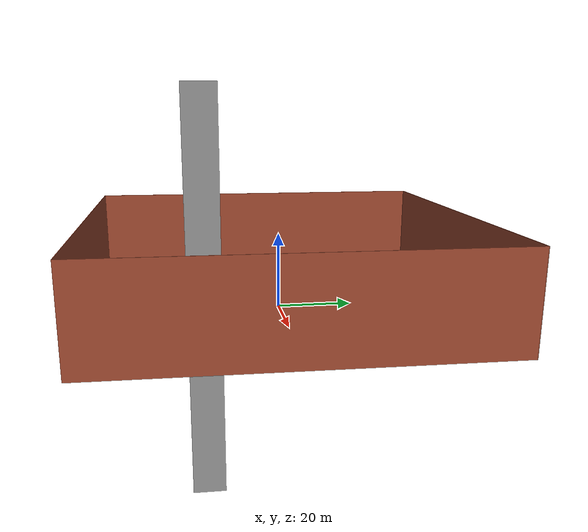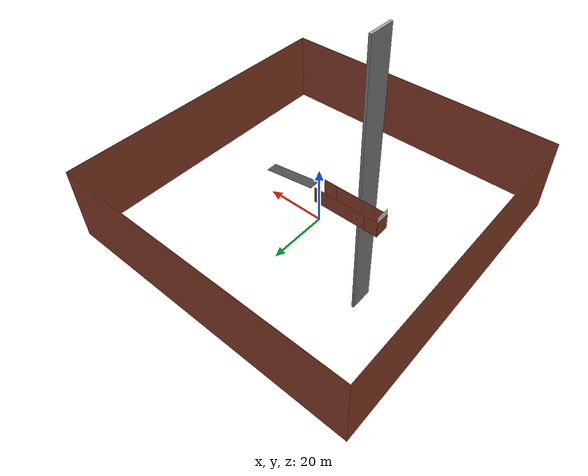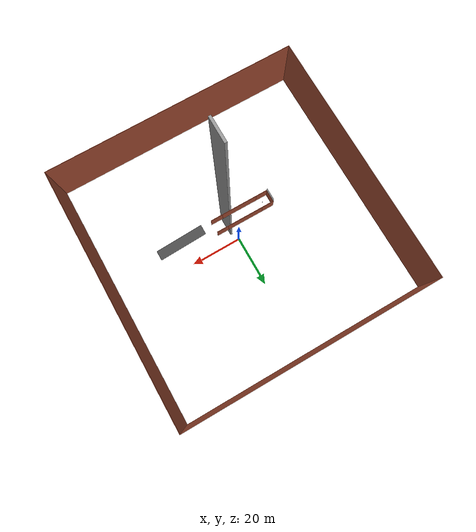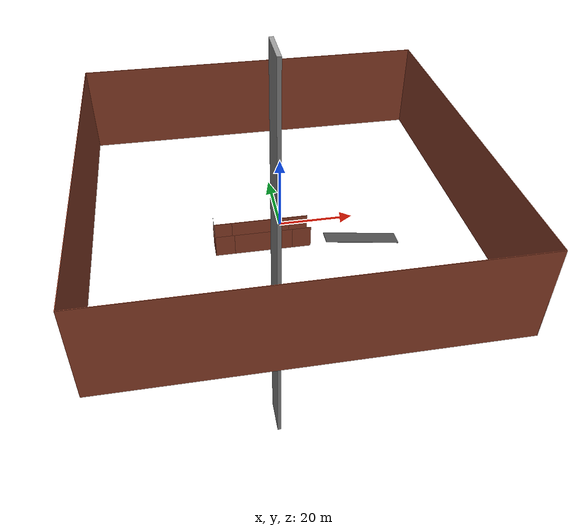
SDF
<sdf version="1.6">
 <world name="vrc_task_1">
  <scene><ambient>0.4 0.4 0.4 1</ambient><background>0.7 0.7 0.7 1</background><shadows>1</shadows></scene>
  <physics name="default_physics" default="0" type="ode">
   <ode>
    <solver>
     <type>quick</type>
     <iters>10</iters>
     <sor>1</sor>
     <use_dynamic_moi_rescaling>0</use_dynamic_moi_rescaling>
    </solver>
    <constraints>
     <cfm>0</cfm>
     <erp>0.2</erp>
     <contact_max_correcting_vel>100</contact_max_correcting_vel>
     <contact_surface_layer>0.001</contact_surface_layer>
    </constraints>
   </ode>
   <max_step_size>0.004</max_step_size>
   <real_time_factor>1</real_time_factor>
   <real_time_update_rate>250</real_time_update_rate>
  </physics>
  <light name="sun" type="directional">
   <pose>0 0 10 0 -0 0</pose>
   <diffuse>0.8 0.8 0.8 1</diffuse>
   <specular>0.2 0.2 0.2 1</specular>
   <attenuation>
    <range>1000</range>
    <constant>0.9</constant>
    <linear>0.01</linear>
    <quadratic>0.001</quadratic>
   </attenuation>
   <direction>-0.5 0.1 -0.9</direction>
  </light>
  <gravity>0 0 -9.8066</gravity>
  <magnetic_field>6e-06 2.3e-05 -4.2e-05</magnetic_field>
  <atmosphere type="adiabatic"/>
  <spherical_coordinates>
   <surface_model>EARTH_WGS84</surface_model>
   <latitude_deg>0</latitude_deg>
   <longitude_deg>0</longitude_deg>
   <elevation>0</elevation>
   <heading_deg>0</heading_deg>
  </spherical_coordinates>
  <model name="wall">
   <pose>0 50 0 0 -0 0</pose>
   <link name="Wall_1">
    <collision name="Wall_1_Collision">
     <geometry><box><size>100.15 0.15 25</size></box></geometry>
     <pose>0 0 12.5 0 -0 0</pose>
    </collision>
    <visual name="Wall_1_Visual">
     <pose>0 0 12.5 0 -0 0</pose>
     <geometry><box><size>100.15 0.15 25</size></box></geometry>
     <material>
      <script><uri>file://media/materials/scripts/gazebo.material</uri><name>Gazebo/Bricks</name></script>
      <ambient>1 1 1 1</ambient>
     </material>
     <meta><layer>0</layer></meta>
    </visual>
   </link>
   <static>1</static>
  </model>
  <model name="wall_clone">
   <pose>0 -50 0 0 -0 0</pose>
   <link name="Wall_1">
    <collision name="Wall_1_Collision">
     <geometry><box><size>100.15 0.15 25</size></box></geometry>
     <pose>0 0 12.5 0 -0 0</pose>
    </collision>
    <visual name="Wall_1_Visual">
     <pose>0 0 12.5 0 -0 0</pose>
     <geometry><box><size>100.15 0.15 25</size></box></geometry>
     <material>
      <script><uri>file://media/materials/scripts/gazebo.material</uri><name>Gazebo/Bricks</name></script>
      <ambient>1 1 1 1</ambient>
     </material>
     <meta><layer>0</layer></meta>
    </visual>
   </link>
   <static>1</static>
  </model>
  <model name="wall_clone_0">
   <pose>-50 0 0 0 -0 1.5708</pose>
   <link name="Wall_1">
    <collision name="Wall_1_Collision">
     <geometry><box><size>100.15 0.15 25</size></box></geometry>
     <pose>0 0 12.5 0 -0 0</pose>
    </collision>
    <visual name="Wall_1_Visual">
     <pose>0 0 12.5 0 -0 0</pose>
     <geometry><box><size>100.15 0.15 25</size></box></geometry>
     <material>
      <script><uri>file://media/materials/scripts/gazebo.material</uri><name>Gazebo/Bricks</name></script>
      <ambient>1 1 1 1</ambient>
     </material>
     <meta><layer>0</layer></meta>
    </visual>
   </link>
   <static>1</static>
  </model>
  <model name="wall_clone_0_clone">
   <pose>50 0 0 0 -0 1.5708</pose>
   <link name="Wall_1">
    <collision name="Wall_1_Collision">
     <geometry><box><size>100.15 0.15 25</size></box></geometry>
     <pose>0 0 12.5 0 -0 0</pose>
    </collision>
    <visual name="Wall_1_Visual">
     <pose>0 0 12.5 0 -0 0</pose>
     <geometry><box><size>100.15 0.15 25</size></box></geometry>
     <material>
      <script><uri>file://media/materials/scripts/gazebo.material</uri><name>Gazebo/Bricks</name></script>
      <ambient>1 1 1 1</ambient>
     </material>
     <meta><layer>0</layer></meta>
    </visual>
   </link>
   <static>1</static>
  </model>
  <model name="ramp">
   <static>1</static>
   <pose>20.1041 -9.88127 0.2 0 0.15 0</pose>
   <link name="link">
    <collision name="collision"><geometry><box><size>20 4 0.1</size></box></geometry></collision>
    <visual name="visual">
     <geometry><box><size>20 4 0.1</size></box></geometry>
     <material>
      <script><uri>model://asphalt_plane/materials/scripts/asphalt.material</uri><name>vrc/asphalt</name></script>
     </material>
    </visual>
   </link>
  </model>
  <model name="unit_box">
   <pose>-4.38531 -20.0303 0.5 0 -0 0</pose>
   <link name="link">
    <inertial>
     <mass>1</mass>
     <inertia>
      <ixx>0.166667</ixx>
      <ixy>0</ixy>
      <ixz>0</ixz>
      <iyy>0.166667</iyy>
      <iyz>0</iyz>
      <izz>0.166667</izz>
     </inertia>
    </inertial>
    <collision name="collision"><geometry><box><size>1 9.73062 117.436</size></box></geometry></collision>
    <visual name="visual">
     <geometry><box><size>1 9.73062 117.436</size></box></geometry>
     <material>
      <script><name>Gazebo/Grey</name><uri>file://media/materials/scripts/gazebo.material</uri></script>
     </material>
    </visual>
   </link>
  </model>
  <model name="cylinder">
   <link name="link_0">
    <inertial>
     <mass>1</mass>
     <inertia><ixx>0.145833</ixx><ixy>0</ixy><ixz>0</ixz><iyy>0.145833</iyy><iyz>0</iyz><izz>0.125</izz></inertia>
    </inertial>
    <visual name="visual">
     <geometry><cylinder><radius>0.1</radius><length>0.5</length></cylinder></geometry>
     <material>
      <script>
       <uri>/home/ahal/model_editor_models/banner/materials/scripts</uri>
       <uri>/home/ahal/model_editor_models/banner/materials/texture/flipkart.jpg</uri>
       <name>flipkart/banner</name>
      </script>
     </material>
    </visual>
    <collision name="collision">
     <geometry><cylinder><radius>0.1</radius><length>0.5</length></cylinder></geometry>
     <surface>
      <friction>
       <ode><mu>1</mu><mu2>1</mu2><fdir1>0 0 0</fdir1><slip1>0</slip1><slip2>0</slip2></ode>
       <torsional>
        <coefficient>1</coefficient>
        <patch_radius>0</patch_radius>
        <surface_radius>0</surface_radius>
        <use_patch_radius>1</use_patch_radius>
        <ode><slip>0</slip></ode>
       </torsional>
      </friction>
      <bounce><restitution_coefficient>0</restitution_coefficient><threshold>1e+06</threshold></bounce>
      <contact>
       <collide_without_contact>0</collide_without_contact>
       <collide_without_contact_bitmask>1</collide_without_contact_bitmask>
       <collide_bitmask>1</collide_bitmask>
       <ode>
        <soft_cfm>0</soft_cfm>
        <soft_erp>0.2</soft_erp>
        <kp>1e+13</kp>
        <kd>1</kd>
        <max_vel>0.01</max_vel>
        <min_depth>0</min_depth>
       </ode>
       <bullet>
        <split_impulse>1</split_impulse>
        <split_impulse_penetration_threshold>-0.01</split_impulse_penetration_threshold>
        <soft_cfm>0</soft_cfm>
        <soft_erp>0.2</soft_erp>
        <kp>1e+13</kp>
        <kd>1</kd>
       </bullet>
      </contact>
     </surface>
    </collision>
   </link>
   <static>0</static>
   <pose>-15.5092 -8.4939 0 0 -0 0</pose>
  </model>
  <model name="new_wall_flipkart">
   <link name="Wall_1">
    <pose>-9.85 2.5 0 0 -0 0</pose>
    <visual name="Wall_1_Visual">
     <pose>0 0 3 0 -0 0</pose>
     <geometry><box><size>5 0.15 6</size></box></geometry>
     <material>
      <script><uri>file://media/materials/scripts/gazebo.material</uri><name>Gazebo/Bricks</name></script>
      <ambient>1 1 1 1</ambient>
      <shader type="pixel"/>
     </material>
     <meta><layer>0</layer></meta>
    </visual>
    <collision name="Wall_1_Collision">
     <pose>0 0 3 0 -0 0</pose>
     <geometry><box><size>5 0.15 6</size></box></geometry>
     <surface>
      <friction>
       <ode><mu>1</mu><mu2>1</mu2><fdir1>0 0 0</fdir1><slip1>0</slip1><slip2>0</slip2></ode>
       <torsional>
        <coefficient>1</coefficient>
        <patch_radius>0</patch_radius>
        <surface_radius>0</surface_radius>
        <use_patch_radius>1</use_patch_radius>
        <ode><slip>0</slip></ode>
       </torsional>
      </friction>
      <bounce><restitution_coefficient>0</restitution_coefficient><threshold>1e+06</threshold></bounce>
      <contact>
       <collide_without_contact>0</collide_without_contact>
       <collide_without_contact_bitmask>1</collide_without_contact_bitmask>
       <collide_bitmask>1</collide_bitmask>
       <ode>
        <soft_cfm>0</soft_cfm>
        <soft_erp>0.2</soft_erp>
        <kp>1e+13</kp>
        <kd>1</kd>
        <max_vel>0.01</max_vel>
        <min_depth>0</min_depth>
       </ode>
       <bullet>
        <split_impulse>1</split_impulse>
        <split_impulse_penetration_threshold>-0.01</split_impulse_penetration_threshold>
        <soft_cfm>0</soft_cfm>
        <soft_erp>0.2</soft_erp>
        <kp>1e+13</kp>
        <kd>1</kd>
       </bullet>
      </contact>
     </surface>
    </collision>
   </link>
   <link name="Wall_2">
    <pose>-0 2.5 0 0 -0 0</pose>
    <visual name="Wall_2_Visual">
     <pose>0 0 3 0 -0 0</pose>
     <geometry><box><size>15 0.15 6</size></box></geometry>
     <material>
      <script><uri>file://media/materials/scripts/gazebo.material</uri><name>Gazebo/Bricks</name></script>
      <ambient>1 1 1 1</ambient>
      <shader type="pixel"/>
     </material>
     <meta><layer>0</layer></meta>
    </visual>
    <collision name="Wall_2_Collision">
     <pose>0 0 3 0 -0 0</pose>
     <geometry><box><size>15 0.15 6</size></box></geometry>
     <surface>
      <friction>
       <ode><mu>1</mu><mu2>1</mu2><fdir1>0 0 0</fdir1><slip1>0</slip1><slip2>0</slip2></ode>
       <torsional>
        <coefficient>1</coefficient>
        <patch_radius>0</patch_radius>
        <surface_radius>0</surface_radius>
        <use_patch_radius>1</use_patch_radius>
        <ode><slip>0</slip></ode>
       </torsional>
      </friction>
      <bounce><restitution_coefficient>0</restitution_coefficient><threshold>1e+06</threshold></bounce>
      <contact>
       <collide_without_contact>0</collide_without_contact>
       <collide_without_contact_bitmask>1</collide_without_contact_bitmask>
       <collide_bitmask>1</collide_bitmask>
       <ode>
        <soft_cfm>0</soft_cfm>
        <soft_erp>0.2</soft_erp>
        <kp>1e+13</kp>
        <kd>1</kd>
        <max_vel>0.01</max_vel>
        <min_depth>0</min_depth>
       </ode>
       <bullet>
        <split_impulse>1</split_impulse>
        <split_impulse_penetration_threshold>-0.01</split_impulse_penetration_threshold>
        <soft_cfm>0</soft_cfm>
        <soft_erp>0.2</soft_erp>
        <kp>1e+13</kp>
        <kd>1</kd>
       </bullet>
      </contact>
     </surface>
    </collision>
   </link>
   <link name="Wall_3">
    <pose>9.85 2.5 0 0 -0 0</pose>
    <visual name="Wall_3_Visual">
     <pose>0 0 3 0 -0 0</pose>
     <geometry><box><size>5 0.15 6</size></box></geometry>
     <material>
      <script><uri>file://media/materials/scripts/gazebo.material</uri><name>Gazebo/Bricks</name></script>
      <ambient>1 1 1 1</ambient>
      <shader type="pixel"/>
     </material>
     <meta><layer>0</layer></meta>
    </visual>
    <collision name="Wall_3_Collision">
     <pose>0 0 3 0 -0 0</pose>
     <geometry><box><size>5 0.15 6</size></box></geometry>
     <surface>
      <friction>
       <ode><mu>1</mu><mu2>1</mu2><fdir1>0 0 0</fdir1><slip1>0</slip1><slip2>0</slip2></ode>
       <torsional>
        <coefficient>1</coefficient>
        <patch_radius>0</patch_radius>
        <surface_radius>0</surface_radius>
        <use_patch_radius>1</use_patch_radius>
        <ode><slip>0</slip></ode>
       </torsional>
      </friction>
      <bounce><restitution_coefficient>0</restitution_coefficient><threshold>1e+06</threshold></bounce>
      <contact>
       <collide_without_contact>0</collide_without_contact>
       <collide_without_contact_bitmask>1</collide_without_contact_bitmask>
       <collide_bitmask>1</collide_bitmask>
       <ode>
        <soft_cfm>0</soft_cfm>
        <soft_erp>0.2</soft_erp>
        <kp>1e+13</kp>
        <kd>1</kd>
        <max_vel>0.01</max_vel>
        <min_depth>0</min_depth>
       </ode>
       <bullet>
        <split_impulse>1</split_impulse>
        <split_impulse_penetration_threshold>-0.01</split_impulse_penetration_threshold>
        <soft_cfm>0</soft_cfm>
        <soft_erp>0.2</soft_erp>
        <kp>1e+13</kp>
        <kd>1</kd>
       </bullet>
      </contact>
     </surface>
    </collision>
   </link>
   <link name="Wall_6">
    <pose>9.85 -2.5 0 0 -0 3.14159</pose>
    <visual name="Wall_6_Visual">
     <pose>0 0 3 0 -0 0</pose>
     <geometry><box><size>5 0.15 6</size></box></geometry>
     <material>
      <script><uri>file://media/materials/scripts/gazebo.material</uri><name>Gazebo/Bricks</name></script>
      <ambient>1 1 1 1</ambient>
      <shader type="pixel"/>
     </material>
     <meta><layer>0</layer></meta>
    </visual>
    <collision name="Wall_6_Collision">
     <pose>0 0 3 0 -0 0</pose>
     <geometry><box><size>5 0.15 6</size></box></geometry>
     <surface>
      <friction>
       <ode><mu>1</mu><mu2>1</mu2><fdir1>0 0 0</fdir1><slip1>0</slip1><slip2>0</slip2></ode>
       <torsional>
        <coefficient>1</coefficient>
        <patch_radius>0</patch_radius>
        <surface_radius>0</surface_radius>
        <use_patch_radius>1</use_patch_radius>
        <ode><slip>0</slip></ode>
       </torsional>
      </friction>
      <bounce><restitution_coefficient>0</restitution_coefficient><threshold>1e+06</threshold></bounce>
      <contact>
       <collide_without_contact>0</collide_without_contact>
       <collide_without_contact_bitmask>1</collide_without_contact_bitmask>
       <collide_bitmask>1</collide_bitmask>
       <ode>
        <soft_cfm>0</soft_cfm>
        <soft_erp>0.2</soft_erp>
        <kp>1e+13</kp>
        <kd>1</kd>
        <max_vel>0.01</max_vel>
        <min_depth>0</min_depth>
       </ode>
       <bullet>
        <split_impulse>1</split_impulse>
        <split_impulse_penetration_threshold>-0.01</split_impulse_penetration_threshold>
        <soft_cfm>0</soft_cfm>
        <soft_erp>0.2</soft_erp>
        <kp>1e+13</kp>
        <kd>1</kd>
       </bullet>
      </contact>
     </surface>
    </collision>
   </link>
   <link name="Wall_7">
    <pose>0 -2.5 0 0 -0 3.14159</pose>
    <visual name="Wall_7_Visual">
     <pose>0 0 3 0 -0 0</pose>
     <geometry><box><size>15 0.15 6</size></box></geometry>
     <material>
      <script><uri>file://media/materials/scripts/gazebo.material</uri><name>Gazebo/Bricks</name></script>
      <ambient>1 1 1 1</ambient>
      <shader type="pixel"/>
     </material>
     <meta><layer>0</layer></meta>
    </visual>
    <collision name="Wall_7_Collision">
     <pose>0 0 3 0 -0 0</pose>
     <geometry><box><size>15 0.15 6</size></box></geometry>
     <surface>
      <friction>
       <ode><mu>1</mu><mu2>1</mu2><fdir1>0 0 0</fdir1><slip1>0</slip1><slip2>0</slip2></ode>
       <torsional>
        <coefficient>1</coefficient>
        <patch_radius>0</patch_radius>
        <surface_radius>0</surface_radius>
        <use_patch_radius>1</use_patch_radius>
        <ode><slip>0</slip></ode>
       </torsional>
      </friction>
      <bounce><restitution_coefficient>0</restitution_coefficient><threshold>1e+06</threshold></bounce>
      <contact>
       <collide_without_contact>0</collide_without_contact>
       <collide_without_contact_bitmask>1</collide_without_contact_bitmask>
       <collide_bitmask>1</collide_bitmask>
       <ode>
        <soft_cfm>0</soft_cfm>
        <soft_erp>0.2</soft_erp>
        <kp>1e+13</kp>
        <kd>1</kd>
        <max_vel>0.01</max_vel>
        <min_depth>0</min_depth>
       </ode>
       <bullet>
        <split_impulse>1</split_impulse>
        <split_impulse_penetration_threshold>-0.01</split_impulse_penetration_threshold>
        <soft_cfm>0</soft_cfm>
        <soft_erp>0.2</soft_erp>
        <kp>1e+13</kp>
        <kd>1</kd>
       </bullet>
      </contact>
     </surface>
    </collision>
   </link>
   <link name="Wall_8">
    <pose>-9.85 -2.5 0 0 -0 3.14159</pose>
    <visual name="Wall_8_Visual">
     <pose>0 0 3 0 -0 0</pose>
     <geometry><box><size>5 0.15 6</size></box></geometry>
     <material>
      <script><uri>file://media/materials/scripts/gazebo.material</uri><name>Gazebo/Bricks</name></script>
      <ambient>1 1 1 1</ambient>
      <shader type="pixel"/>
     </material>
     <meta><layer>0</layer></meta>
    </visual>
    <collision name="Wall_8_Collision">
     <pose>0 0 3 0 -0 0</pose>
     <geometry><box><size>5 0.15 6</size></box></geometry>
     <surface>
      <friction>
       <ode><mu>1</mu><mu2>1</mu2><fdir1>0 0 0</fdir1><slip1>0</slip1><slip2>0</slip2></ode>
       <torsional>
        <coefficient>1</coefficient>
        <patch_radius>0</patch_radius>
        <surface_radius>0</surface_radius>
        <use_patch_radius>1</use_patch_radius>
        <ode><slip>0</slip></ode>
       </torsional>
      </friction>
      <bounce><restitution_coefficient>0</restitution_coefficient><threshold>1e+06</threshold></bounce>
      <contact>
       <collide_without_contact>0</collide_without_contact>
       <collide_without_contact_bitmask>1</collide_without_contact_bitmask>
       <collide_bitmask>1</collide_bitmask>
       <ode>
        <soft_cfm>0</soft_cfm>
        <soft_erp>0.2</soft_erp>
        <kp>1e+13</kp>
        <kd>1</kd>
        <max_vel>0.01</max_vel>
        <min_depth>0</min_depth>
       </ode>
       <bullet>
        <split_impulse>1</split_impulse>
        <split_impulse_penetration_threshold>-0.01</split_impulse_penetration_threshold>
        <soft_cfm>0</soft_cfm>
        <soft_erp>0.2</soft_erp>
        <kp>1e+13</kp>
        <kd>1</kd>
       </bullet>
      </contact>
     </surface>
    </collision>
   </link>
   <link name="Wall_9">
    <pose>-12.275 0 0 0 -0 1.5708</pose>
    <visual name="Wall_9_Visual">
     <pose>0 0 3 0 -0 0</pose>
     <geometry><box><size>5.15 0.15 6</size></box></geometry>
     <material>
      <script><uri>file://media/materials/scripts/gazebo.material</uri><name>Gazebo/Bricks</name></script>
      <ambient>1 1 1 1</ambient>
      <shader type="pixel"/>
      <emissive>0 0 0 1</emissive>
     </material>
     <meta><layer>0</layer></meta>
    </visual>
    <collision name="Wall_9_Collision">
     <pose>0 0 3 0 -0 0</pose>
     <geometry><box><size>5.15 0.15 6</size></box></geometry>
     <surface>
      <friction>
       <ode><mu>1</mu><mu2>1</mu2><fdir1>0 0 0</fdir1><slip1>0</slip1><slip2>0</slip2></ode>
       <torsional>
        <coefficient>1</coefficient>
        <patch_radius>0</patch_radius>
        <surface_radius>0</surface_radius>
        <use_patch_radius>1</use_patch_radius>
        <ode><slip>0</slip></ode>
       </torsional>
      </friction>
      <bounce><restitution_coefficient>0</restitution_coefficient><threshold>1e+06</threshold></bounce>
      <contact>
       <collide_without_contact>0</collide_without_contact>
       <collide_without_contact_bitmask>1</collide_without_contact_bitmask>
       <collide_bitmask>1</collide_bitmask>
       <ode>
        <soft_cfm>0</soft_cfm>
        <soft_erp>0.2</soft_erp>
        <kp>1e+13</kp>
        <kd>1</kd>
        <max_vel>0.01</max_vel>
        <min_depth>0</min_depth>
       </ode>
       <bullet>
        <split_impulse>1</split_impulse>
        <split_impulse_penetration_threshold>-0.01</split_impulse_penetration_threshold>
        <soft_cfm>0</soft_cfm>
        <soft_erp>0.2</soft_erp>
        <kp>1e+13</kp>
        <kd>1</kd>
       </bullet>
      </contact>
     </surface>
    </collision>
   </link>
   <model name="banner">
    <link name="link_0">
     <inertial>
      <mass>1</mass>
      <inertia>
       <ixx>0.166667</ixx>
       <ixy>0</ixy>
       <ixz>0</ixz>
       <iyy>0.166667</iyy>
       <iyz>0</iyz>
       <izz>0.166667</izz>
      </inertia>
     </inertial>
     <visual name="visual">
      <geometry><box><size>5 0.01 2.5</size></box></geometry>
      <material>
       <script>
        <uri>/home/ahal/model_editor_models/banner/materials/scripts</uri>
        <uri>/home/ahal/model_editor_models/banner/materials/texture/flipkart.jpg</uri>
        <name>flipkart/banner</name>
       </script>
       <shader type="pixel"><normal_map>__default__</normal_map></shader>
       <ambient>1 1 1 1</ambient>
       <diffuse>1 1 1 1</diffuse>
       <specular>0 0 0 1</specular>
       <emissive>0 0 0 1</emissive>
      </material>
     </visual>
     <collision name="collision">
      <geometry><box><size>5 0.01 2.5</size></box></geometry>
      <surface>
       <friction>
        <ode><mu>1</mu><mu2>1</mu2><fdir1>0 0 0</fdir1><slip1>0</slip1><slip2>0</slip2></ode>
        <torsional>
         <coefficient>1</coefficient>
         <patch_radius>0</patch_radius>
         <surface_radius>0</surface_radius>
         <use_patch_radius>1</use_patch_radius>
         <ode><slip>0</slip></ode>
        </torsional>
       </friction>
       <bounce><restitution_coefficient>0</restitution_coefficient><threshold>1e+06</threshold></bounce>
       <contact>
        <collide_without_contact>0</collide_without_contact>
        <collide_without_contact_bitmask>1</collide_without_contact_bitmask>
        <collide_bitmask>1</collide_bitmask>
        <ode>
         <soft_cfm>0</soft_cfm>
         <soft_erp>0.2</soft_erp>
         <kp>1e+13</kp>
         <kd>1</kd>
         <max_vel>0.01</max_vel>
         <min_depth>0</min_depth>
        </ode>
        <bullet>
         <split_impulse>1</split_impulse>
         <split_impulse_penetration_threshold>-0.01</split_impulse_penetration_threshold>
         <soft_cfm>0</soft_cfm>
         <soft_erp>0.2</soft_erp>
         <kp>1e+13</kp>
         <kd>1</kd>
        </bullet>
       </contact>
      </surface>
     </collision>
    </link>
    <static>0</static>
    <pose>-12.2337 0.008693 7.2081 0 -0 1.57021</pose>
   </model>
   <joint name="link_0_JOINT_0" type="fixed">
    <parent>banner::link_0</parent>
    <child>Wall_9</child>
    <physics>
     <ode><limit><cfm>0</cfm><erp>0.2</erp></limit><suspension><cfm>0</cfm><erp>0.2</erp></suspension></ode>
    </physics>
   </joint>
   <static>1</static>
   <pose>-6.02337 -7.84863 0 0 -0 0</pose>
  </model>
 </world>
</sdf>
